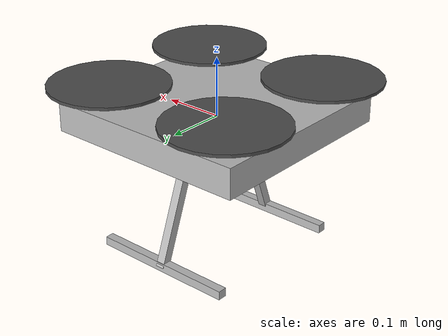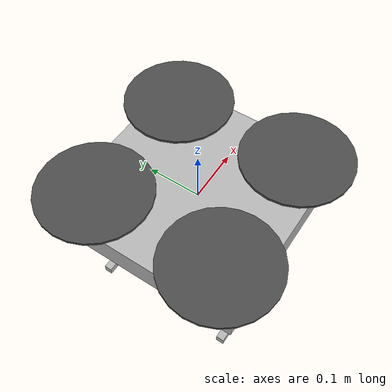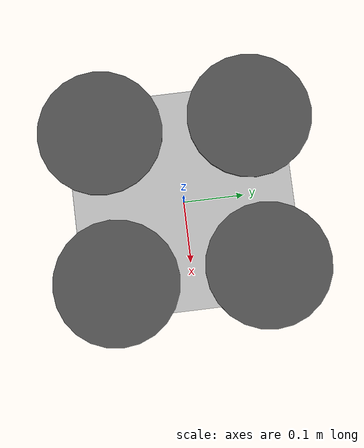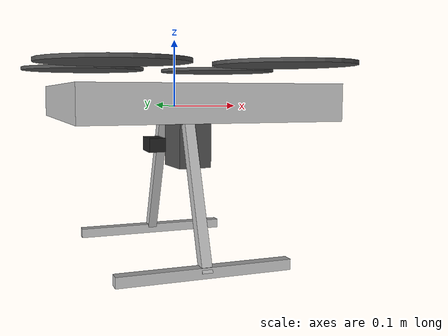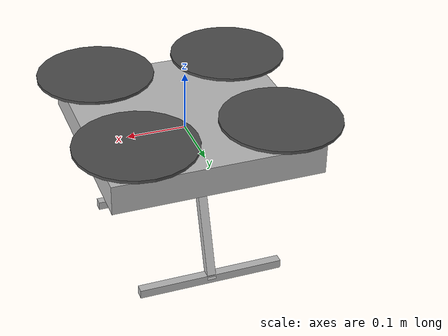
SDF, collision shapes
<?xml version="1.0" ?>
<sdf version="1.6">
  <model name="x500_vlp16">
    <include>
      <uri>model://x500</uri>
    </include>

    <link name="velodyne_link">
      <pose>0 0 0.2 0 0 0</pose>
      <inertial>
        <mass>0.23</mass>
        <inertia>
          <ixx>0.0001344</ixx>
          <iyy>0.0001344</iyy>
          <izz>0.00007188</izz>
          <ixy>0</ixy>
          <ixz>0</ixz>
          <iyz>0</iyz>
        </inertia>
      </inertial>

      <visual name="velodyne_visual">
        <geometry>
          <cylinder>
            <radius>0.025</radius>
            <length>0.0717</length>
          </cylinder>
        </geometry>
        <material>
          <script>
            <name>Gazebo/DarkGrey</name>
            <uri>file://media/materials/scripts/gazebo.material</uri>
          </script>
        </material>
      </visual>

      <visual name="velodyne_mast_visual">
        <pose>0 0 -0.101925 0 0 0</pose>
        <geometry>
          <cylinder>
            <radius>0.008</radius>
            <length>0.13215</length>
          </cylinder>
        </geometry>
        <material>
          <script>
            <name>Gazebo/Grey</name>
            <uri>file://media/materials/scripts/gazebo.material</uri>
          </script>
        </material>
      </visual>

      <sensor type="ray" name="velodyne-VLP16">
        <pose>0 0 0 0 0 0</pose>
        <visualize>false</visualize>
        <update_rate>10</update_rate>
        <ray>
          <scan>
            <horizontal>
              <samples>1800</samples>
              <resolution>1</resolution>
              <min_angle>-3.14159265359</min_angle>
              <max_angle>3.14159265359</max_angle>
            </horizontal>
            <vertical>
              <samples>16</samples>
              <resolution>1</resolution>
              <min_angle>-0.261799</min_angle>
              <max_angle>0.261799</max_angle>
            </vertical>
          </scan>
          <range>
            <min>0.05</min>
            <max>30</max>
            <resolution>0.001</resolution>
          </range>
          <noise>
            <type>gaussian</type>
            <mean>0.0</mean>
            <stddev>0.008</stddev>
          </noise>
        </ray>

        <plugin name="gazebo_ros_laser_controller" filename="libgazebo_ros_velodyne_laser.so">
          <topicName>/velodyne_points</topicName>
          <frameName>velodyne_link</frameName>
          <min_range>0.05</min_range>
          <max_range>30</max_range>
          <gaussianNoise>0.008</gaussianNoise>
        </plugin>
      </sensor>
    </link>

    <joint name="velodyne_joint" type="fixed">
      <parent>x500::base_link</parent>
      <child>velodyne_link</child>
    </joint>

    <include>
      <uri>model://tfmini_lidar</uri>
      <!-- Placed in the rig on 2026-09-06. roll = -1.5369 is the 90 deg that turns the
           lens pair to face the ground; see the face survey in tfmini_lidar/model.sdf. -->
      <pose>-0.0328 -0.0005 -0.0573 -1.5369 -0.0046 0.0061</pose>
    </include>

    <joint name="tfmini_lidar_joint" type="fixed">
      <parent>x500::base_link</parent>
      <child>tfmini_lidar::link</child>
    </joint>

    <link name="camera_link">
      <pose>0.0231 0.0043 -0.0518 3.1332 -0.0015 -3.0737</pose>
      <inertial>
        <mass>0.095</mass>
        <inertia>
          <ixx>6.5e-05</ixx>
          <ixy>0</ixy>
          <ixz>0</ixz>
          <iyy>6.5e-05</iyy>
          <iyz>0</iyz>
          <izz>4.8e-05</izz>
        </inertia>
      </inertial>

      <collision name="camera_collision">
        <geometry>
          <box>
            <size>0.052 0.061 0.084</size>
          </box>
        </geometry>
      </collision>

      <visual name="camera_visual">
        <geometry>
          <mesh>
            <uri>model://iris_vlp16_cam/meshes/siyi_a8_mini.stl</uri>
            <scale>1 1 1</scale>
          </mesh>
        </geometry>
        <material>
          <script>
            <name>Gazebo/DarkGrey</name>
            <uri>file://media/materials/scripts/gazebo.material</uri>
          </script>
        </material>
      </visual>

      <sensor name="camera" type="camera">
        <pose>0 0 0 0 -0.259724 -3.071500</pose>
        <always_on>1</always_on>
        <update_rate>15</update_rate>
        <visualize>false</visualize>
        <camera name="a8_mini">
          <horizontal_fov>1.4137</horizontal_fov>
          <image>
            <width>640</width>
            <height>480</height>
            <format>R8G8B8</format>
          </image>
          <clip>
            <near>0.05</near>
            <far>100</far>
          </clip>
          <noise>
            <type>gaussian</type>
            <mean>0.0</mean>
            <stddev>0.007</stddev>
          </noise>
        </camera>
        <plugin name="camera_controller" filename="libgazebo_ros_camera.so">
          <alwaysOn>true</alwaysOn>
          <updateRate>15</updateRate>
          <cameraName>camera</cameraName>
          <imageTopicName>image_raw</imageTopicName>
          <cameraInfoTopicName>camera_info</cameraInfoTopicName>
          <frameName>camera_link</frameName>
          <hackBaseline>0.0</hackBaseline>
          <distortionK1>0.0</distortionK1>
          <distortionK2>0.0</distortionK2>
          <distortionK3>0.0</distortionK3>
          <distortionT1>0.0</distortionT1>
          <distortionT2>0.0</distortionT2>
        </plugin>
      </sensor>
    </link>

    <joint name="camera_joint" type="fixed">
      <parent>x500::base_link</parent>
      <child>camera_link</child>
    </joint>
  </model>
</sdf>

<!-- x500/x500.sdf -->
<sdf version="1.6">
  <model name="x500">
    <link name="base_link">
      <velocity_decay/>
      <inertial>
        <mass>2.0</mass>
        <inertia>
          <ixx>0.02166666666666667</ixx><ixy>0</ixy><ixz>0</ixz>
          <iyy>0.02166666666666667</iyy><iyz>0</iyz>
          <izz>0.04000000000000001</izz>
        </inertia>
      </inertial>
      <visual name="base_link_visual">
        <pose>0 0 .025 0 0 3.141592654</pose>
        <geometry>
          <mesh><scale>0.689655 0.689655 1</scale><uri>model://x500/meshes/NXP-HGD-CF.dae</uri></mesh>
        </geometry>
      </visual>
      <visual name="5010_motor_base_0">
        <pose>0.120 0.120 .032 0 0 -.45</pose>
        <geometry>
          <mesh><scale>1 1 1</scale><uri>model://x500/meshes/5010Base.dae</uri></mesh>
        </geometry>
      </visual>
      <visual name="5010_motor_base_1">
        <pose>-0.120 0.120 .032 0 0 -.45</pose>
        <geometry>
          <mesh><scale>1 1 1</scale><uri>model://x500/meshes/5010Base.dae</uri></mesh>
        </geometry>
      </visual>
      <visual name="5010_motor_base_2">
        <pose>0.120 -0.120 .032 0 0 -.45</pose>
        <geometry>
          <mesh><scale>1 1 1</scale><uri>model://x500/meshes/5010Base.dae</uri></mesh>
        </geometry>
      </visual>
      <visual name="5010_motor_base_3">
        <pose>-0.120 -0.120 .032 0 0 -.45</pose>
        <geometry>
          <mesh><scale>1 1 1</scale><uri>model://x500/meshes/5010Base.dae</uri></mesh>
        </geometry>
      </visual>

      <collision name="base_link_collision_0">
        <pose>0 0 .007 0 0 0</pose>
        <geometry><box><size>0.35355339059327373 0.35355339059327373 0.05</size></box></geometry>
        <surface>
          <contact><ode><min_depth>0.001</min_depth><max_vel>0</max_vel></ode></contact>
          <friction><ode/></friction>
        </surface>
      </collision>
      <collision name="base_link_collision_1">
        <pose>0 -0.098 -.123 -0.35 0 0</pose>
        <geometry><box><size>0.015 0.015 0.21</size></box></geometry>
        <surface>
          <contact><ode><min_depth>0.001</min_depth><max_vel>0</max_vel></ode></contact>
          <friction><ode/></friction>
        </surface>
      </collision>
      <collision name="base_link_collision_2">
        <pose>0 0.098 -.123 0.35 0 0</pose>
        <geometry><box><size>0.015 0.015 0.21</size></box></geometry>
        <surface>
          <contact><ode><min_depth>0.001</min_depth><max_vel>0</max_vel></ode></contact>
          <friction><ode/></friction>
        </surface>
      </collision>
      <collision name="base_link_collision_3">
        <pose>0 -0.132 -.2195 0 0 0</pose>
        <geometry><box><size>0.25 0.015 0.015</size></box></geometry>
        <surface>
          <contact><ode><min_depth>0.001</min_depth><max_vel>0</max_vel></ode></contact>
          <friction><ode/></friction>
        </surface>
      </collision>
      <collision name="base_link_collision_4">
        <pose>0 0.132 -.2195 0 0 0</pose>
        <geometry><box><size>0.25 0.015 0.015</size></box></geometry>
        <surface>
          <contact><ode><min_depth>0.001</min_depth><max_vel>0</max_vel></ode></contact>
          <friction><ode/></friction>
        </surface>
      </collision>
    </link>

    <link name='/imu_link'>
      <pose>0 0 0.02 0 0 0</pose>
      <inertial>
        <pose>0 0 0 0 0 0</pose>
        <mass>0.015</mass>
        <inertia>
          <ixx>1e-05</ixx>
          <ixy>0</ixy>
          <ixz>0</ixz>
          <iyy>1e-05</iyy>
          <iyz>0</iyz>
          <izz>1e-05</izz>
        </inertia>
      </inertial>
    </link>

    <joint name='/imu_joint' type='revolute'>
      <child>/imu_link</child>
      <parent>base_link</parent>
      <axis>
        <xyz>1 0 0</xyz>
        <limit>
          <lower>0</lower>
          <upper>0</upper>
          <effort>0</effort>
          <velocity>0</velocity>
        </limit>
        <dynamics>
          <spring_reference>0</spring_reference>
          <spring_stiffness>0</spring_stiffness>
        </dynamics>
        <use_parent_model_frame>1</use_parent_model_frame>
      </axis>
    </joint>

    <link name="rotor_0">
      <gravity>true</gravity>
      <self_collide>false</self_collide>
      <velocity_decay/>
      <pose>0.120 -0.120 0.06 0 0 0</pose>
      <inertial>
        <mass>0.016076923076923075</mass>
        <inertia>
          <ixx>3.8464910483993325e-07</ixx><ixy>0</ixy><ixz>0</ixz>
          <iyy>2.6115851691700804e-05</iyy><iyz>0</iyz>
          <izz>2.649858234714004e-05</izz>
        </inertia>
      </inertial>
      <visual name="rotor_0_visual">
        <pose>-0.01575758 -0.10484848 -0.01146006 0 0 0</pose>
        <geometry>
          <mesh><scale>0.6060606061 0.6060606061 0.6060606061</scale><uri>model://x500/meshes/1345_prop_ccw.stl</uri></mesh>
        </geometry>
        <material>
          <script><name>Gazebo/DarkGrey</name><uri>file://media/materials/scripts/gazebo.material</uri></script>
        </material>
      </visual>
      <visual name="rotor_0_visual_motor_bell">
        <pose>0 0 -.032 0 0 0</pose>
        <geometry><mesh><scale>1 1 1</scale><uri>model://x500/meshes/5010Bell.dae</uri></mesh></geometry>
      </visual>
      <collision name="rotor_0_collision">
        <pose>0 0 0 0 0 0</pose>
        <geometry><cylinder><radius>0.1</radius><length>0.005</length></cylinder></geometry>
        <surface><contact><ode/></contact><friction><ode/></friction></surface>
      </collision>
    </link>

    <joint name="rotor_0_joint" type="revolute">
      <parent>base_link</parent>
      <child>rotor_0</child>
      <axis>
        <xyz>0 0 1</xyz>
        <limit><lower>-1e16</lower><upper>1e16</upper></limit>
        <dynamics><spring_reference>0</spring_reference><spring_stiffness>0</spring_stiffness></dynamics>
      </axis>
      <physics><ode><implicit_spring_damper>1</implicit_spring_damper></ode></physics>
    </joint>

    <link name="rotor_1">
      <gravity>true</gravity>
      <self_collide>false</self_collide>
      <velocity_decay/>
      <pose>-0.120 0.120 0.06 0 0 0</pose>
      <inertial>
        <mass>0.016076923076923075</mass>
        <inertia>
          <ixx>3.8464910483993325e-07</ixx><ixy>0</ixy><ixz>0</ixz>
          <iyy>2.6115851691700804e-05</iyy><iyz>0</iyz>
          <izz>2.649858234714004e-05</izz>
        </inertia>
      </inertial>
      <visual name="rotor_1_visual">
        <pose>-0.01575758 -0.10484848 -0.01146006 0 0 0</pose>
        <geometry>
          <mesh><scale>0.6060606061 0.6060606061 0.6060606061</scale><uri>model://x500/meshes/1345_prop_ccw.stl</uri></mesh>
        </geometry>
        <material>
          <script><name>Gazebo/DarkGrey</name><uri>file://media/materials/scripts/gazebo.material</uri></script>
        </material>
      </visual>
      <visual name="rotor_1_visual_motor_bell">
        <pose>0 0 -.032 0 0 0</pose>
        <geometry><mesh><scale>1 1 1</scale><uri>model://x500/meshes/5010Bell.dae</uri></mesh></geometry>
      </visual>
      <collision name="rotor_1_collision">
        <pose>0 0 0 0 0 0</pose>
        <geometry><cylinder><radius>0.1</radius><length>0.005</length></cylinder></geometry>
        <surface><contact><ode/></contact><friction><ode/></friction></surface>
      </collision>
    </link>

    <joint name="rotor_1_joint" type="revolute">
      <parent>base_link</parent>
      <child>rotor_1</child>
      <axis>
        <xyz>0 0 1</xyz>
        <limit><lower>-1e16</lower><upper>1e16</upper></limit>
        <dynamics><spring_reference>0</spring_reference><spring_stiffness>0</spring_stiffness></dynamics>
      </axis>
      <physics><ode><implicit_spring_damper>1</implicit_spring_damper></ode></physics>
    </joint>

    <link name="rotor_2">
      <gravity>true</gravity>
      <self_collide>false</self_collide>
      <velocity_decay/>
      <pose>0.120 0.120 0.06 0 0 0</pose>
      <inertial>
        <mass>0.016076923076923075</mass>
        <inertia>
          <ixx>3.8464910483993325e-07</ixx><ixy>0</ixy><ixz>0</ixz>
          <iyy>2.6115851691700804e-05</iyy><iyz>0</iyz>
          <izz>2.649858234714004e-05</izz>
        </inertia>
      </inertial>
      <visual name="rotor_2_visual">
        <pose>-0.01575758 -0.10484848 -0.01146006 0 0 0</pose>
        <geometry>
          <mesh><scale>0.6060606061 0.6060606061 0.6060606061</scale><uri>model://x500/meshes/1345_prop_cw.stl</uri></mesh>
        </geometry>
        <material>
          <script><name>Gazebo/DarkGrey</name><uri>file://media/materials/scripts/gazebo.material</uri></script>
        </material>
      </visual>
      <visual name="rotor_2_visual_motor_bell">
        <pose>0 0 -.032 0 0 0</pose>
        <geometry><mesh><scale>1 1 1</scale><uri>model://x500/meshes/5010Bell.dae</uri></mesh></geometry>
      </visual>
      <collision name="rotor_2_collision">
        <pose>0 0 0 0 0 0</pose>
        <geometry><cylinder><radius>0.1</radius><length>0.005</length></cylinder></geometry>
        <surface><contact><ode/></contact><friction><ode/></friction></surface>
      </collision>
    </link>

    <joint name="rotor_2_joint" type="revolute">
      <parent>base_link</parent>
      <child>rotor_2</child>
      <axis>
        <xyz>0 0 1</xyz>
        <limit><lower>-1e16</lower><upper>1e16</upper></limit>
        <dynamics><spring_reference>0</spring_reference><spring_stiffness>0</spring_stiffness></dynamics>
      </axis>
      <physics><ode><implicit_spring_damper>1</implicit_spring_damper></ode></physics>
    </joint>

    <link name="rotor_3">
      <gravity>true</gravity>
      <self_collide>false</self_collide>
      <velocity_decay/>
      <pose>-0.120 -0.120 0.06 0 0 0</pose>
      <inertial>
        <mass>0.016076923076923075</mass>
        <inertia>
          <ixx>3.8464910483993325e-07</ixx><ixy>0</ixy><ixz>0</ixz>
          <iyy>2.6115851691700804e-05</iyy><iyz>0</iyz>
          <izz>2.649858234714004e-05</izz>
        </inertia>
      </inertial>
      <visual name="rotor_3_visual">
        <pose>-0.01575758 -0.10484848 -0.01146006 0 0 0</pose>
        <geometry>
          <mesh><scale>0.6060606061 0.6060606061 0.6060606061</scale><uri>model://x500/meshes/1345_prop_cw.stl</uri></mesh>
        </geometry>
        <material>
          <script><name>Gazebo/DarkGrey</name><uri>file://media/materials/scripts/gazebo.material</uri></script>
        </material>
      </visual>
      <visual name="rotor_3_visual_motor_bell">
        <pose>0 0 -.032 0 0 0</pose>
        <geometry><mesh><scale>1 1 1</scale><uri>model://x500/meshes/5010Bell.dae</uri></mesh></geometry>
      </visual>
      <collision name="rotor_3_collision">
        <pose>0 0 0 0 0 0</pose>
        <geometry><cylinder><radius>0.1</radius><length>0.005</length></cylinder></geometry>
        <surface><contact><ode/></contact><friction><ode/></friction></surface>
      </collision>
    </link>

    <joint name="rotor_3_joint" type="revolute">
      <parent>base_link</parent>
      <child>rotor_3</child>
      <axis>
        <xyz>0 0 1</xyz>
        <limit><lower>-1e16</lower><upper>1e16</upper></limit>
        <dynamics><spring_reference>0</spring_reference><spring_stiffness>0</spring_stiffness></dynamics>
      </axis>
      <physics><ode><implicit_spring_damper>1</implicit_spring_damper></ode></physics>
    </joint>

    <plugin name='front_right_motor_model' filename='libgazebo_motor_model.so'>
      <robotNamespace/>
      <jointName>rotor_0_joint</jointName>
      <linkName>rotor_0</linkName>
      <turningDirection>ccw</turningDirection>
      <timeConstantUp>0.0125</timeConstantUp>
      <timeConstantDown>0.025</timeConstantDown>
      <maxRotVelocity>1000</maxRotVelocity>
      <motorConstant>1.4e-05</motorConstant>
      <momentConstant>0.016</momentConstant>
      <commandSubTopic>/gazebo/command/motor_speed</commandSubTopic>
      <motorNumber>0</motorNumber>
      <rotorDragCoefficient>8.06428e-05</rotorDragCoefficient>
      <rollingMomentCoefficient>1e-06</rollingMomentCoefficient>
      <motorSpeedPubTopic>/motor_speed/0</motorSpeedPubTopic>
      <rotorVelocitySlowdownSim>10</rotorVelocitySlowdownSim>
    </plugin>
    <plugin name='back_left_motor_model' filename='libgazebo_motor_model.so'>
      <robotNamespace/>
      <jointName>rotor_1_joint</jointName>
      <linkName>rotor_1</linkName>
      <turningDirection>ccw</turningDirection>
      <timeConstantUp>0.0125</timeConstantUp>
      <timeConstantDown>0.025</timeConstantDown>
      <maxRotVelocity>1000</maxRotVelocity>
      <motorConstant>1.4e-05</motorConstant>
      <momentConstant>0.016</momentConstant>
      <commandSubTopic>/gazebo/command/motor_speed</commandSubTopic>
      <motorNumber>1</motorNumber>
      <rotorDragCoefficient>8.06428e-05</rotorDragCoefficient>
      <rollingMomentCoefficient>1e-06</rollingMomentCoefficient>
      <motorSpeedPubTopic>/motor_speed/1</motorSpeedPubTopic>
      <rotorVelocitySlowdownSim>10</rotorVelocitySlowdownSim>
    </plugin>
    <plugin name='front_left_motor_model' filename='libgazebo_motor_model.so'>
      <robotNamespace/>
      <jointName>rotor_2_joint</jointName>
      <linkName>rotor_2</linkName>
      <turningDirection>cw</turningDirection>
      <timeConstantUp>0.0125</timeConstantUp>
      <timeConstantDown>0.025</timeConstantDown>
      <maxRotVelocity>1000</maxRotVelocity>
      <motorConstant>1.4e-05</motorConstant>
      <momentConstant>0.016</momentConstant>
      <commandSubTopic>/gazebo/command/motor_speed</commandSubTopic>
      <motorNumber>2</motorNumber>
      <rotorDragCoefficient>8.06428e-05</rotorDragCoefficient>
      <rollingMomentCoefficient>1e-06</rollingMomentCoefficient>
      <motorSpeedPubTopic>/motor_speed/2</motorSpeedPubTopic>
      <rotorVelocitySlowdownSim>10</rotorVelocitySlowdownSim>
    </plugin>
    <plugin name='back_right_motor_model' filename='libgazebo_motor_model.so'>
      <robotNamespace/>
      <jointName>rotor_3_joint</jointName>
      <linkName>rotor_3</linkName>
      <turningDirection>cw</turningDirection>
      <timeConstantUp>0.0125</timeConstantUp>
      <timeConstantDown>0.025</timeConstantDown>
      <maxRotVelocity>1000</maxRotVelocity>
      <motorConstant>1.4e-05</motorConstant>
      <momentConstant>0.016</momentConstant>
      <commandSubTopic>/gazebo/command/motor_speed</commandSubTopic>
      <motorNumber>3</motorNumber>
      <rotorDragCoefficient>8.06428e-05</rotorDragCoefficient>
      <rollingMomentCoefficient>1e-06</rollingMomentCoefficient>
      <motorSpeedPubTopic>/motor_speed/3</motorSpeedPubTopic>
      <rotorVelocitySlowdownSim>10</rotorVelocitySlowdownSim>
    </plugin>
    <plugin name='rosbag' filename='libgazebo_multirotor_base_plugin.so'>
      <robotNamespace/>
      <linkName>base_link</linkName>
      <rotorVelocitySlowdownSim>10</rotorVelocitySlowdownSim>
    </plugin>
    <plugin name='groundtruth_plugin' filename='libgazebo_groundtruth_plugin.so'>
      <robotNamespace/>
    </plugin>
    <plugin name='magnetometer_plugin' filename='libgazebo_magnetometer_plugin.so'>
      <robotNamespace/>
      <pubRate>100</pubRate>
      <noiseDensity>0.0004</noiseDensity>
      <randomWalk>6.4e-06</randomWalk>
      <biasCorrelationTime>600</biasCorrelationTime>
      <magTopic>/mag</magTopic>
    </plugin>
    <plugin name='barometer_plugin' filename='libgazebo_barometer_plugin.so'>
      <robotNamespace/>
      <pubRate>50</pubRate>
      <baroTopic>/baro</baroTopic>
      <baroDriftPaPerSec>0</baroDriftPaPerSec>
    </plugin>
    <plugin name='mavlink_interface' filename='libgazebo_mavlink_interface.so'>
      <robotNamespace/>
      <imuSubTopic>/imu</imuSubTopic>
      <magSubTopic>/mag</magSubTopic>
      <baroSubTopic>/baro</baroSubTopic>
      <mavlink_addr>INADDR_ANY</mavlink_addr>
      <mavlink_tcp_port>4560</mavlink_tcp_port>
      <mavlink_udp_port>14560</mavlink_udp_port>
      <serialEnabled>0</serialEnabled>
      <serialDevice>/dev/ttyACM0</serialDevice>
      <baudRate>921600</baudRate>
      <qgc_addr>INADDR_ANY</qgc_addr>
      <qgc_udp_port>14550</qgc_udp_port>
      <sdk_addr>INADDR_ANY</sdk_addr>
      <sdk_udp_port>14540</sdk_udp_port>
      <hil_mode>0</hil_mode>
      <hil_state_level>0</hil_state_level>
      <send_vision_estimation>0</send_vision_estimation>
      <send_odometry>1</send_odometry>
      <enable_lockstep>1</enable_lockstep>
      <use_tcp>1</use_tcp>
      <motorSpeedCommandPubTopic>/gazebo/command/motor_speed</motorSpeedCommandPubTopic>
      <control_channels>
        <channel name='rotor1'>
          <input_index>0</input_index>
          <input_offset>0</input_offset>
          <input_scaling>1000</input_scaling>
          <zero_position_disarmed>0</zero_position_disarmed>
          <zero_position_armed>100</zero_position_armed>
          <joint_control_type>velocity</joint_control_type>
        </channel>
        <channel name='rotor2'>
          <input_index>1</input_index>
          <input_offset>0</input_offset>
          <input_scaling>1000</input_scaling>
          <zero_position_disarmed>0</zero_position_disarmed>
          <zero_position_armed>100</zero_position_armed>
          <joint_control_type>velocity</joint_control_type>
        </channel>
        <channel name='rotor3'>
          <input_index>2</input_index>
          <input_offset>0</input_offset>
          <input_scaling>1000</input_scaling>
          <zero_position_disarmed>0</zero_position_disarmed>
          <zero_position_armed>100</zero_position_armed>
          <joint_control_type>velocity</joint_control_type>
        </channel>
        <channel name='rotor4'>
          <input_index>3</input_index>
          <input_offset>0</input_offset>
          <input_scaling>1000</input_scaling>
          <zero_position_disarmed>0</zero_position_disarmed>
          <zero_position_armed>100</zero_position_armed>
          <joint_control_type>velocity</joint_control_type>
        </channel>
        <channel name='rotor5'>
          <input_index>4</input_index>
          <input_offset>1</input_offset>
          <input_scaling>324.6</input_scaling>
          <zero_position_disarmed>0</zero_position_disarmed>
          <zero_position_armed>0</zero_position_armed>
          <joint_control_type>velocity</joint_control_type>
          <joint_control_pid>
            <p>0.1</p>
            <i>0</i>
            <d>0</d>
            <iMax>0.0</iMax>
            <iMin>0.0</iMin>
            <cmdMax>2</cmdMax>
            <cmdMin>-2</cmdMin>
          </joint_control_pid>
          <joint_name>zephyr_delta_wing::propeller_joint</joint_name>
        </channel>
        <channel name='rotor6'>
          <input_index>5</input_index>
          <input_offset>0</input_offset>
          <input_scaling>0.524</input_scaling>
          <zero_position_disarmed>0</zero_position_disarmed>
          <zero_position_armed>0</zero_position_armed>
          <joint_control_type>position</joint_control_type>
          <joint_name>zephyr_delta_wing::flap_left_joint</joint_name>
          <joint_control_pid>
            <p>10.0</p>
            <i>0</i>
            <d>0</d>
            <iMax>0</iMax>
            <iMin>0</iMin>
            <cmdMax>20</cmdMax>
            <cmdMin>-20</cmdMin>
          </joint_control_pid>
        </channel>
        <channel name='rotor7'>
          <input_index>6</input_index>
          <input_offset>0</input_offset>
          <input_scaling>0.524</input_scaling>
          <zero_position_disarmed>0</zero_position_disarmed>
          <zero_position_armed>0</zero_position_armed>
          <joint_control_type>position</joint_control_type>
          <joint_name>zephyr_delta_wing::flap_right_joint</joint_name>
          <joint_control_pid>
            <p>10.0</p>
            <i>0</i>
            <d>0</d>
            <iMax>0</iMax>
            <iMin>0</iMin>
            <cmdMax>20</cmdMax>
            <cmdMin>-20</cmdMin>
          </joint_control_pid>
        </channel>
        <channel name='rotor8'>
          <input_index>7</input_index>
          <input_offset>0</input_offset>
          <input_scaling>0.524</input_scaling>
          <zero_position_disarmed>0</zero_position_disarmed>
          <zero_position_armed>0</zero_position_armed>
          <joint_control_type>position</joint_control_type>
        </channel>
      </control_channels>
    </plugin>
    <plugin name='rotors_gazebo_imu_plugin' filename='libgazebo_imu_plugin.so'>
      <robotNamespace/>
      <linkName>/imu_link</linkName>
      <imuTopic>/imu</imuTopic>
      <gyroscopeNoiseDensity>0.00018665</gyroscopeNoiseDensity>
      <gyroscopeRandomWalk>3.8785e-05</gyroscopeRandomWalk>
      <gyroscopeBiasCorrelationTime>1000.0</gyroscopeBiasCorrelationTime>
      <gyroscopeTurnOnBiasSigma>0.0087</gyroscopeTurnOnBiasSigma>
      <accelerometerNoiseDensity>0.00186</accelerometerNoiseDensity>
      <accelerometerRandomWalk>0.006</accelerometerRandomWalk>
      <accelerometerBiasCorrelationTime>300.0</accelerometerBiasCorrelationTime>
      <accelerometerTurnOnBiasSigma>0.196</accelerometerTurnOnBiasSigma>
    </plugin>
  </model>
</sdf>

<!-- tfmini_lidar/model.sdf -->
<sdf version="1.5">
  <model name="tfmini_lidar">
    <link name="link">
      <pose>0 0 0 0 0 0</pose>

      <inertial>
        <pose>0 0 0 0 0 0</pose>
        <mass>0.005</mass>
        <inertia>
          <ixx>1.0e-7</ixx>
          <ixy>0</ixy>
          <ixz>0</ixz>
          <iyy>1.0e-7</iyy>
          <iyz>0</iyz>
          <izz>1.0e-7</izz>
        </inertia>
      </inertial>

      <visual name="visual">
        <geometry>
          <mesh>
            <uri>model://tfmini_lidar/meshes/tfmini.stl</uri>
            <!-- The CAD file is authored in millimetres (measured bounding box 25 x 21 x 35 raw
                 units). Without this scale it would spawn as a 25-metre block. -->
            <scale>0.001 0.001 0.001</scale>
          </mesh>
        </geometry>
        <material>
          <script>
            <name>Gazebo/Black</name>
            <uri>file://media/materials/scripts/gazebo.material</uri>
          </script>
        </material>
      </visual>

      <collision name="collision">
        <geometry>
          <box>
            <size>0.025 0.021 0.035</size>
          </box>
        </geometry>
      </collision>

      <sensor name="tfmini_lidar" type="ray">
        <!-- Pitch +90 deg so the beam points straight down, matching the stock lidar/sf10a
             models' convention. -->
        <pose>0 0 0 0 1.57079633 0</pose>
        <always_on>1</always_on>
        <update_rate>20</update_rate>
        <visualize>false</visualize>
        <ray>
          <scan>
            <horizontal>
              <samples>1</samples>
              <resolution>1</resolution>
              <min_angle>-0</min_angle>
              <max_angle>0</max_angle>
            </horizontal>
          </scan>
          <range>
            <min>0.06</min> <!-- do not change: use min_distance (below) for realistic behavior -->
            <max>35</max>   <!-- do not change: use max_distance (below) for realistic behavior -->
            <resolution>0.01</resolution>
          </range>
          <noise>
            <type>gaussian</type>
            <mean>0.0</mean>
            <stddev>0.01</stddev>
          </noise>
        </ray>

        <plugin name="LaserPlugin" filename="libgazebo_lidar_plugin.so">
          <robotNamespace></robotNamespace>
          <min_distance>0.1</min_distance>
          <max_distance>12.0</max_distance>
        </plugin>

        <plugin name="tfmini_ros_range" filename="libgazebo_ros_range.so">
          <robotNamespace></robotNamespace>
          <topicName>/tfmini/range</topicName>
          <frameName>tfmini_link</frameName>
          <fov>0.05</fov>
          <radiation>infrared</radiation>
          <minRange>0.1</minRange>
          <maxRange>12.0</maxRange>
          <gaussianNoise>0.01</gaussianNoise>
          <updateRate>20</updateRate>
        </plugin>
      </sensor>
    </link>
  </model>
</sdf>
